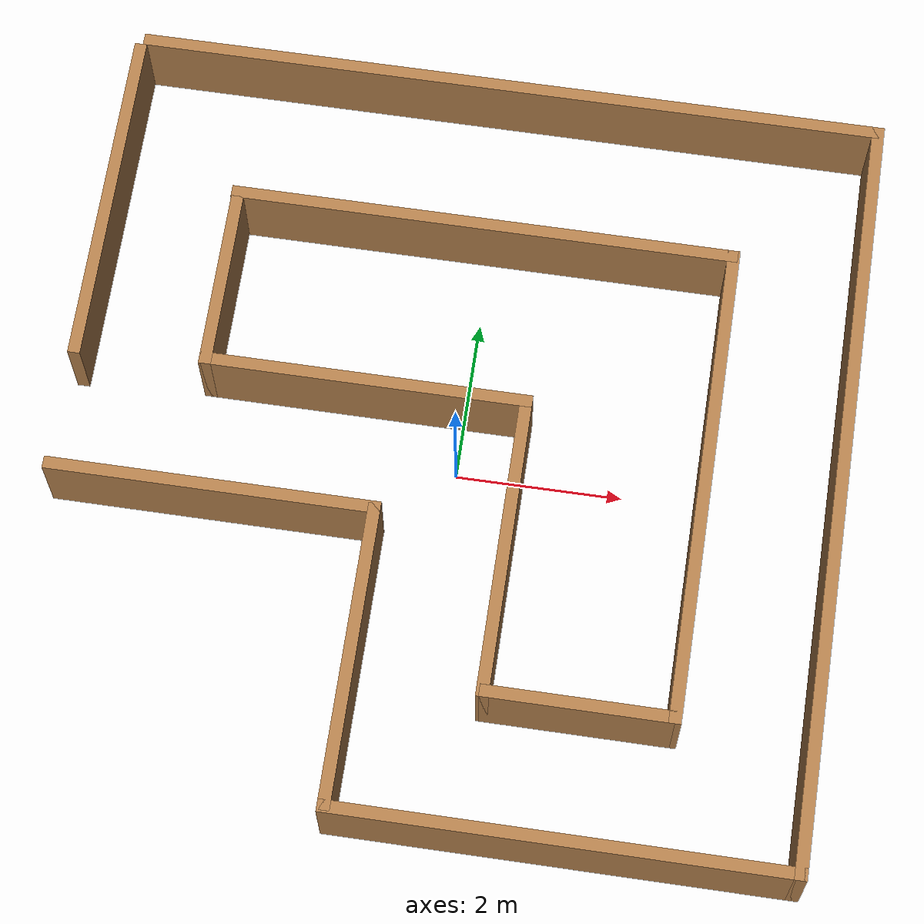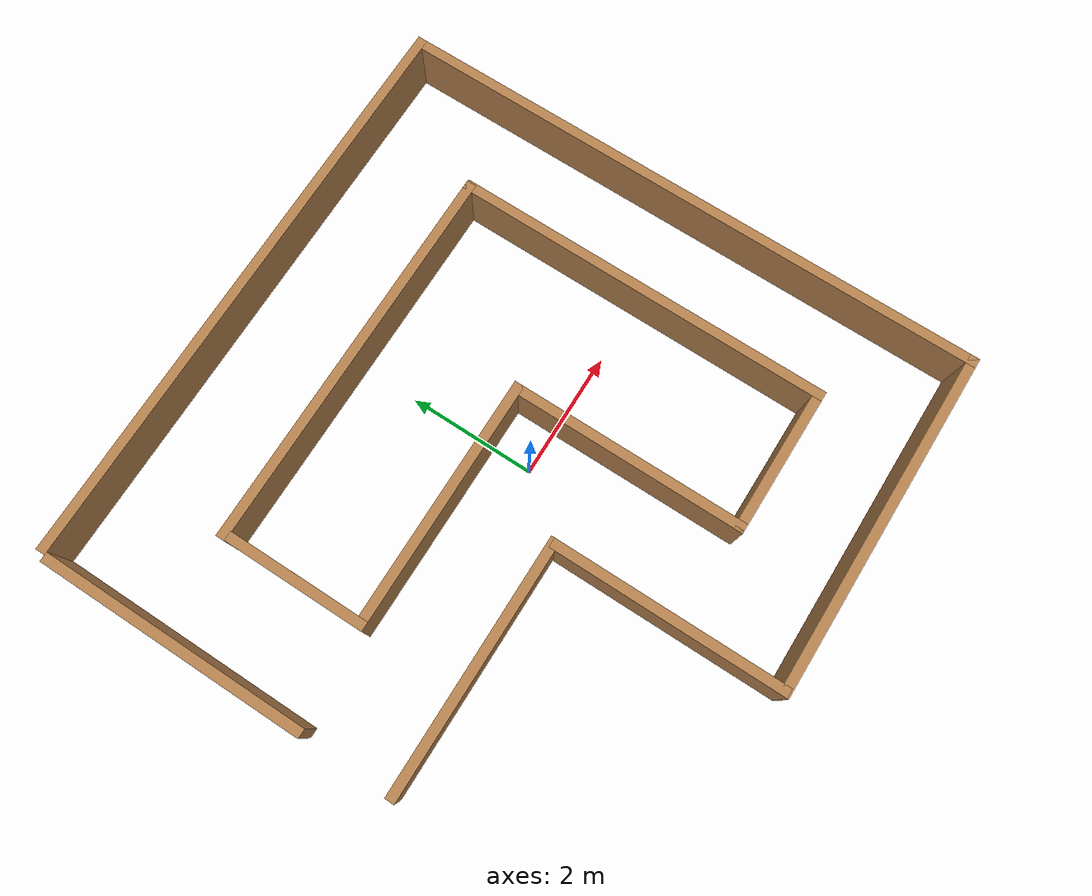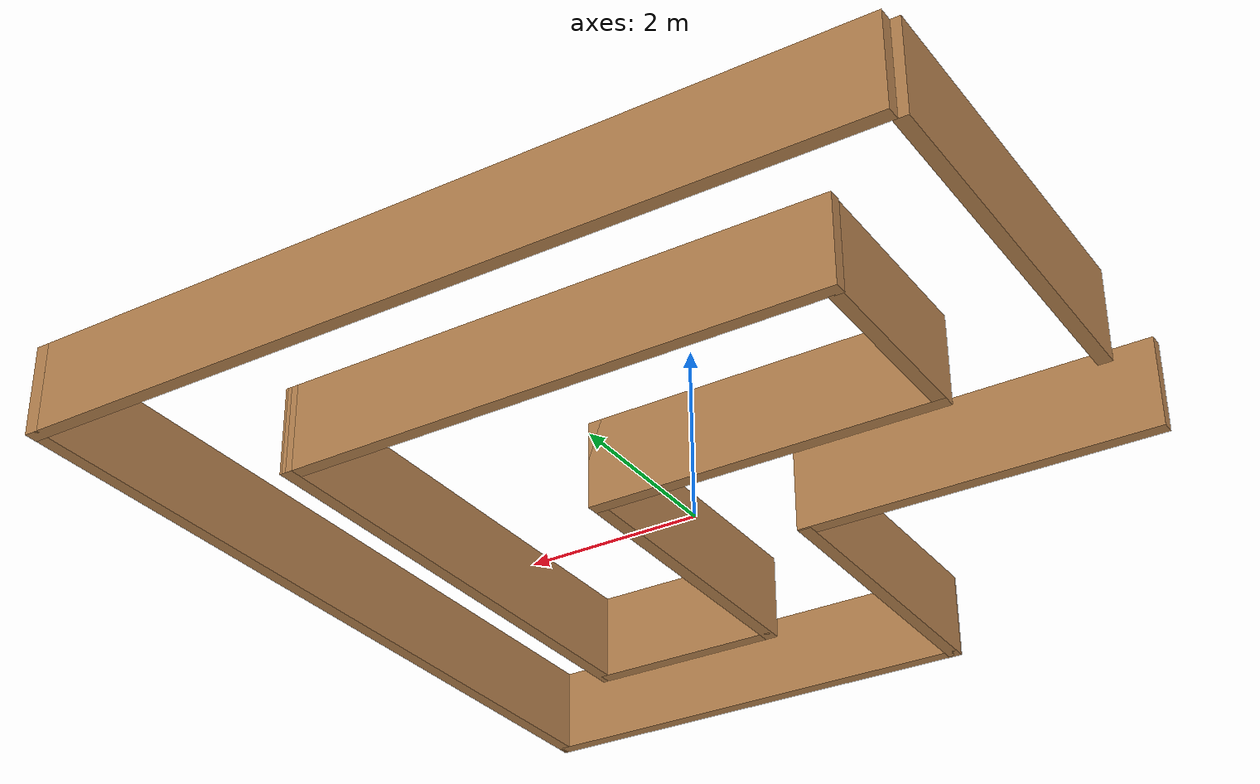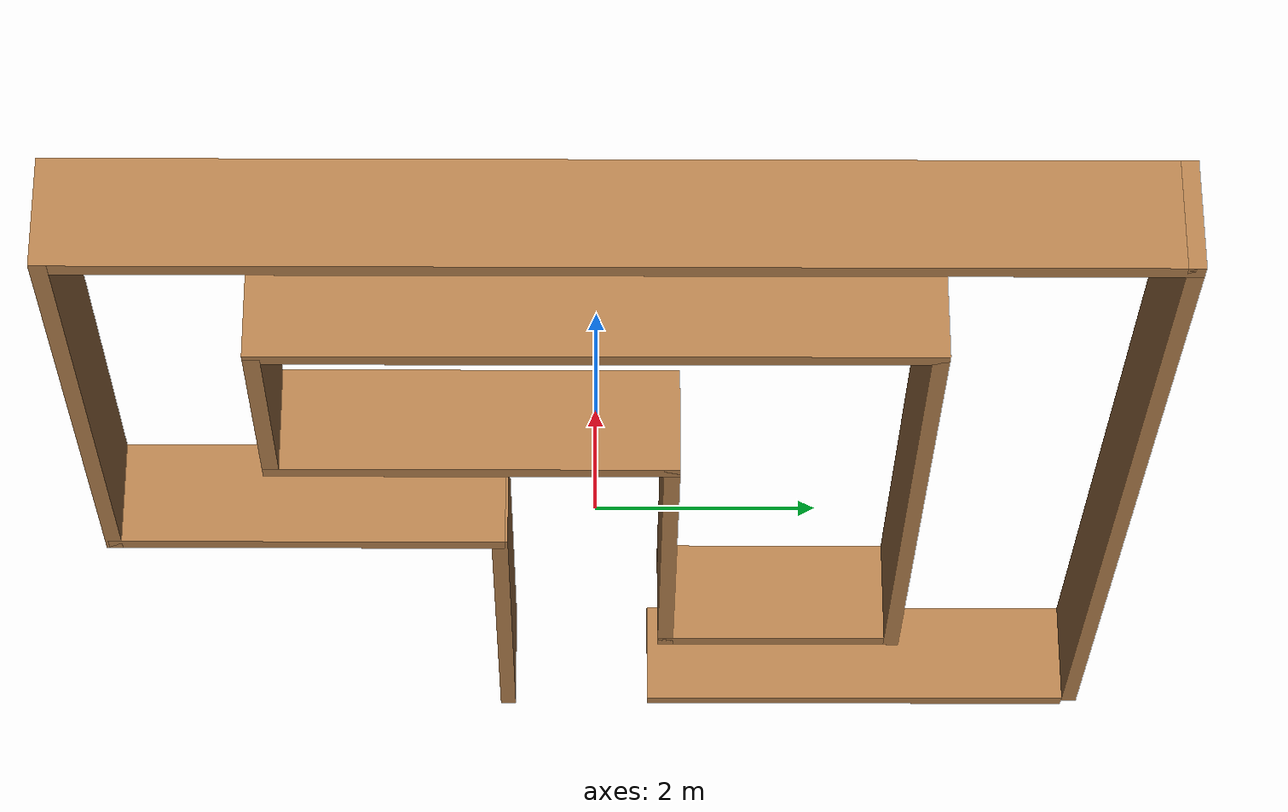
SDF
<?xml version='1.0'?>
<sdf version='1.4'>
  <model name='Circuit_ql_2'>
    <pose>-0.076 0.178 0 0 -0 0</pose>
    <link name='Wall_0'>
      <collision name='Wall_0_Collision'>
        <geometry>
          <box>
            <size>4.25 0.15 1</size>
          </box>
        </geometry>
        <pose>0 0 0.5 0 -0 0</pose>
      </collision>
      <visual name='Wall_0_Visual'>
        <pose>0 0 0.5 0 -0 0</pose>
        <geometry>
          <box>
            <size>4.25 0.15 1</size>
          </box>
        </geometry>
        <material>
          <script>
            <uri>file://media/materials/scripts/gazebo.material</uri>
            <name>Gazebo/Wood</name>
          </script>
          <ambient>1 1 1 1</ambient>
        </material>
      </visual>
      <pose>-4.6 2.475 0 0 0 -1.5708</pose>
    </link>
    <link name='Wall_1'>
      <collision name='Wall_1_Collision'>
        <geometry>
          <box>
            <size>4 0.15 1</size>
          </box>
        </geometry>
        <pose>0 0 0.5 0 -0 0</pose>
      </collision>
      <visual name='Wall_1_Visual'>
        <pose>0 0 0.5 0 -0 0</pose>
        <geometry>
          <box>
            <size>4 0.15 1</size>
          </box>
        </geometry>
        <material>
          <script>
            <uri>file://media/materials/scripts/gazebo.material</uri>
            <name>Gazebo/Wood</name>
          </script>
          <ambient>1 1 1 1</ambient>
        </material>
      </visual>
      <pose>-2.675 -1.075 0 0 -0 0</pose>
    </link>
    <link name='Wall_11'>
      <collision name='Wall_11_Collision'>
        <geometry>
          <box>
            <size>2.25 0.15 1</size>
          </box>
        </geometry>
        <pose>0 0 0.5 0 -0 0</pose>
      </collision>
      <visual name='Wall_11_Visual'>
        <pose>0 0 0.5 0 -0 0</pose>
        <geometry>
          <box>
            <size>2.25 0.15 1</size>
          </box>
        </geometry>
        <material>
          <script>
            <uri>file://media/materials/scripts/gazebo.material</uri>
            <name>Gazebo/Wood</name>
          </script>
          <ambient>1 1 1 1</ambient>
        </material>
      </visual>
      <pose>-3.036 1.559 0 0 0 -1.5708</pose>
    </link>
    <link name='Wall_12'>
      <collision name='Wall_12_Collision'>
        <geometry>
          <box>
            <size>4 0.15 1</size>
          </box>
        </geometry>
        <pose>0 0 0.5 0 -0 0</pose>
      </collision>
      <visual name='Wall_12_Visual'>
        <pose>0 0 0.5 0 -0 0</pose>
        <geometry>
          <box>
            <size>4 0.15 1</size>
          </box>
        </geometry>
        <material>
          <script>
            <uri>file://media/materials/scripts/gazebo.material</uri>
            <name>Gazebo/Wood</name>
          </script>
          <ambient>1 1 1 1</ambient>
        </material>
      </visual>
      <pose>-1.111 0.509 0 0 -0 0</pose>
    </link>
    <link name='Wall_13'>
      <collision name='Wall_13_Collision'>
        <geometry>
          <box>
            <size>3.75 0.15 1</size>
          </box>
        </geometry>
        <pose>0 0 0.5 0 -0 0</pose>
      </collision>
      <visual name='Wall_13_Visual'>
        <pose>0 0 0.5 0 -0 0</pose>
        <geometry>
          <box>
            <size>3.75 0.15 1</size>
          </box>
        </geometry>
        <material>
          <script>
            <uri>file://media/materials/scripts/gazebo.material</uri>
            <name>Gazebo/Wood</name>
          </script>
          <ambient>1 1 1 1</ambient>
        </material>
      </visual>
      <pose>0.814 -1.291 0 0 0 -1.5708</pose>
    </link>
    <link name='Wall_14'>
      <collision name='Wall_14_Collision'>
        <geometry>
          <box>
            <size>2.25 0.15 1</size>
          </box>
        </geometry>
        <pose>0 0 0.5 0 -0 0</pose>
      </collision>
      <visual name='Wall_14_Visual'>
        <pose>0 0 0.5 0 -0 0</pose>
        <geometry>
          <box>
            <size>2.25 0.15 1</size>
          </box>
        </geometry>
        <material>
          <script>
            <uri>file://media/materials/scripts/gazebo.material</uri>
            <name>Gazebo/Wood</name>
          </script>
          <ambient>1 1 1 1</ambient>
        </material>
      </visual>
      <pose>1.9 -3.091 0 0 -0 0</pose>
    </link>
    <link name='Wall_15'>
      <collision name='Wall_15_Collision'>
        <geometry>
          <box>
            <size>5.98502 0.15 1</size>
          </box>
        </geometry>
        <pose>0 0 0.5 0 -0 0</pose>
      </collision>
      <visual name='Wall_15_Visual'>
        <pose>0 0 0.5 0 -0 0</pose>
        <geometry>
          <box>
            <size>5.98502 0.15 1</size>
          </box>
        </geometry>
        <material>
          <script>
            <uri>file://media/materials/scripts/gazebo.material</uri>
            <name>Gazebo/Wood</name>
          </script>
          <ambient>1 1 1 1</ambient>
        </material>
      </visual>
      <pose>3.0215 -0.1735 0 0 -0 1.56823</pose>
    </link>
    <link name='Wall_16'>
      <collision name='Wall_16_Collision'>
        <geometry>
          <box>
            <size>6.2 0.15 1</size>
          </box>
        </geometry>
        <pose>0 0 0.5 0 -0 0</pose>
      </collision>
      <visual name='Wall_16_Visual'>
        <pose>0 0 0.5 0 -0 0</pose>
        <geometry>
          <box>
            <size>6.2 0.15 1</size>
          </box>
        </geometry>
        <material>
          <script>
            <uri>file://media/materials/scripts/gazebo.material</uri>
            <name>Gazebo/Wood</name>
          </script>
          <ambient>1 1 1 1</ambient>
        </material>
      </visual>
      <pose>-0.02 2.744 0 0 -0 3.14159</pose>
    </link>
    <link name='Wall_2'>
      <collision name='Wall_2_Collision'>
        <geometry>
          <box>
            <size>3.7 0.15 1</size>
          </box>
        </geometry>
        <pose>0 0 0.5 0 -0 0</pose>
      </collision>
      <visual name='Wall_2_Visual'>
        <pose>0 0 0.5 0 -0 0</pose>
        <geometry>
          <box>
            <size>3.7 0.15 1</size>
          </box>
        </geometry>
        <material>
          <script>
            <uri>file://media/materials/scripts/gazebo.material</uri>
            <name>Gazebo/Wood</name>
          </script>
          <ambient>1 1 1 1</ambient>
        </material>
      </visual>
      <pose>-0.75 -2.875 0 0 0 -1.5708</pose>
    </link>
    <link name='Wall_3'>
      <collision name='Wall_3_Collision'>
        <geometry>
          <box>
            <size>5.5 0.15 1</size>
          </box>
        </geometry>
        <pose>0 0 0.5 0 -0 0</pose>
      </collision>
      <visual name='Wall_3_Visual'>
        <pose>0 0 0.5 0 -0 0</pose>
        <geometry>
          <box>
            <size>5.5 0.15 1</size>
          </box>
        </geometry>
        <material>
          <script>
            <uri>file://media/materials/scripts/gazebo.material</uri>
            <name>Gazebo/Wood</name>
          </script>
          <ambient>1 1 1 1</ambient>
        </material>
      </visual>
      <pose>1.925 -4.675 0 0 -0 0</pose>
    </link>
    <link name='Wall_7'>
      <collision name='Wall_7_Collision'>
        <geometry>
          <box>
            <size>9.5 0.15 1</size>
          </box>
        </geometry>
        <pose>0 0 0.5 0 -0 0</pose>
      </collision>
      <visual name='Wall_7_Visual'>
        <pose>0 0 0.5 0 -0 0</pose>
        <geometry>
          <box>
            <size>9.5 0.15 1</size>
          </box>
        </geometry>
        <material>
          <script>
            <uri>file://media/materials/scripts/gazebo.material</uri>
            <name>Gazebo/Wood</name>
          </script>
          <ambient>1 1 1 1</ambient>
        </material>
      </visual>
      <pose>4.6 0 0 0 -0 1.5708</pose>
    </link>
    <link name='Wall_9'>
      <collision name='Wall_9_Collision'>
        <geometry>
          <box>
            <size>9.25 0.15 1</size>
          </box>
        </geometry>
        <pose>0 0 0.5 0 -0 0</pose>
      </collision>
      <visual name='Wall_9_Visual'>
        <pose>0 0 0.5 0 -0 0</pose>
        <geometry>
          <box>
            <size>9.25 0.15 1</size>
          </box>
        </geometry>
        <material>
          <script>
            <uri>file://media/materials/scripts/gazebo.material</uri>
            <name>Gazebo/Wood</name>
          </script>
          <ambient>1 1 1 1</ambient>
        </material>
      </visual>
      <pose>0.05 4.675 0 0 -0 3.14159</pose>
    </link>
    <static>1</static>
  </model>
</sdf>
